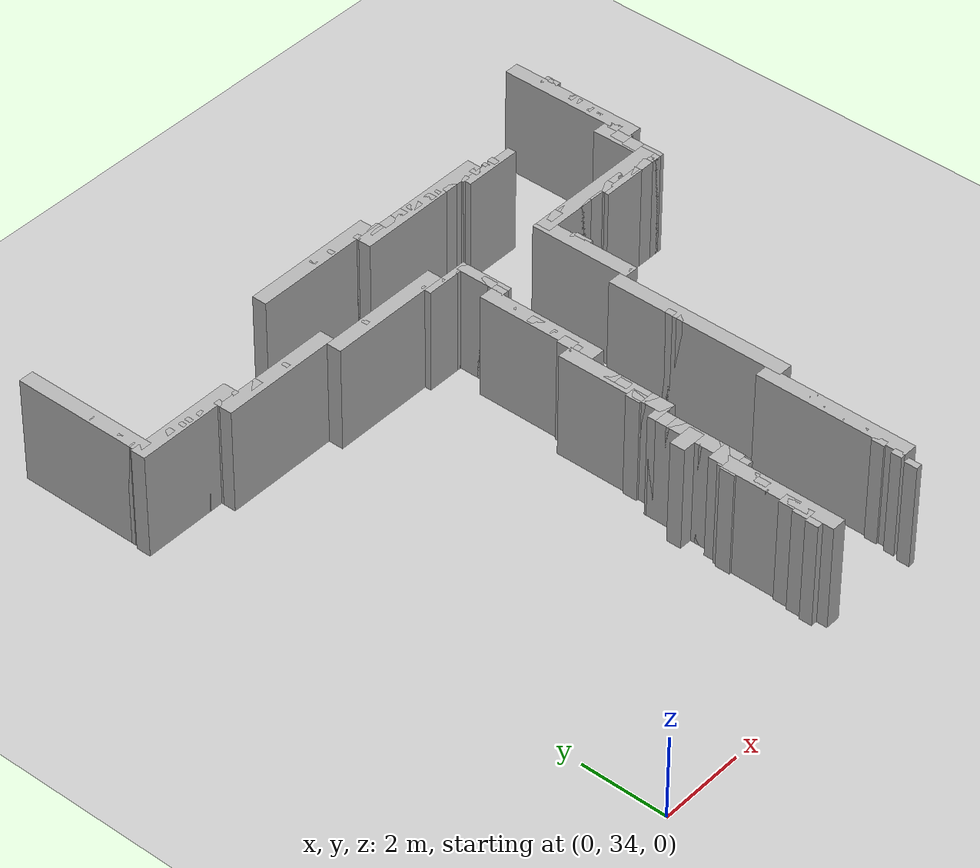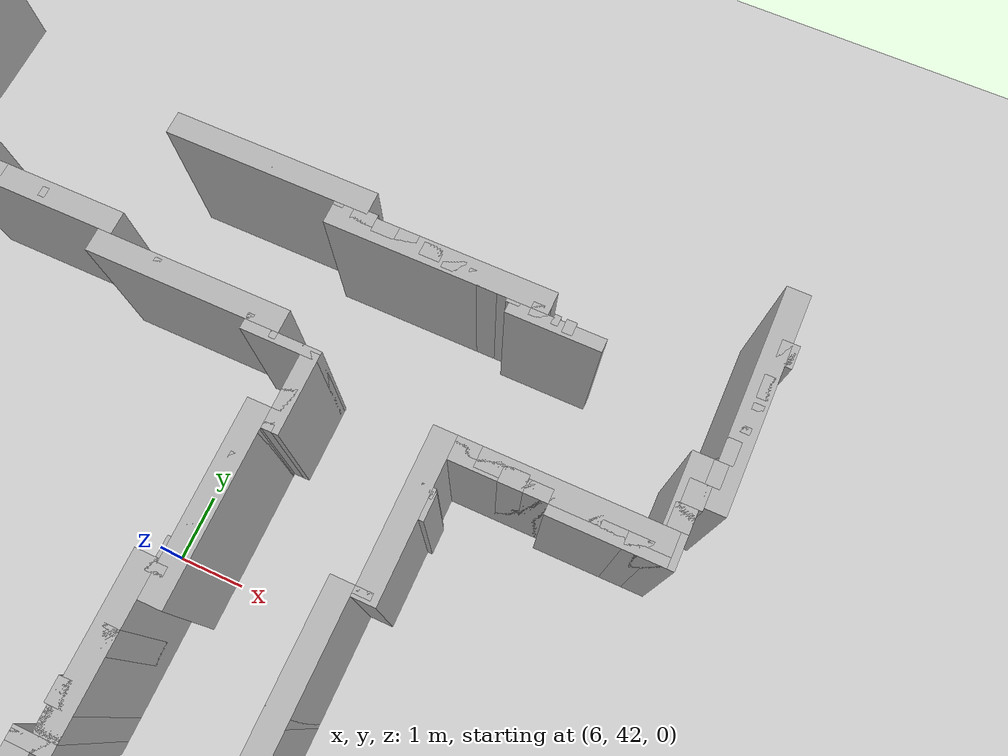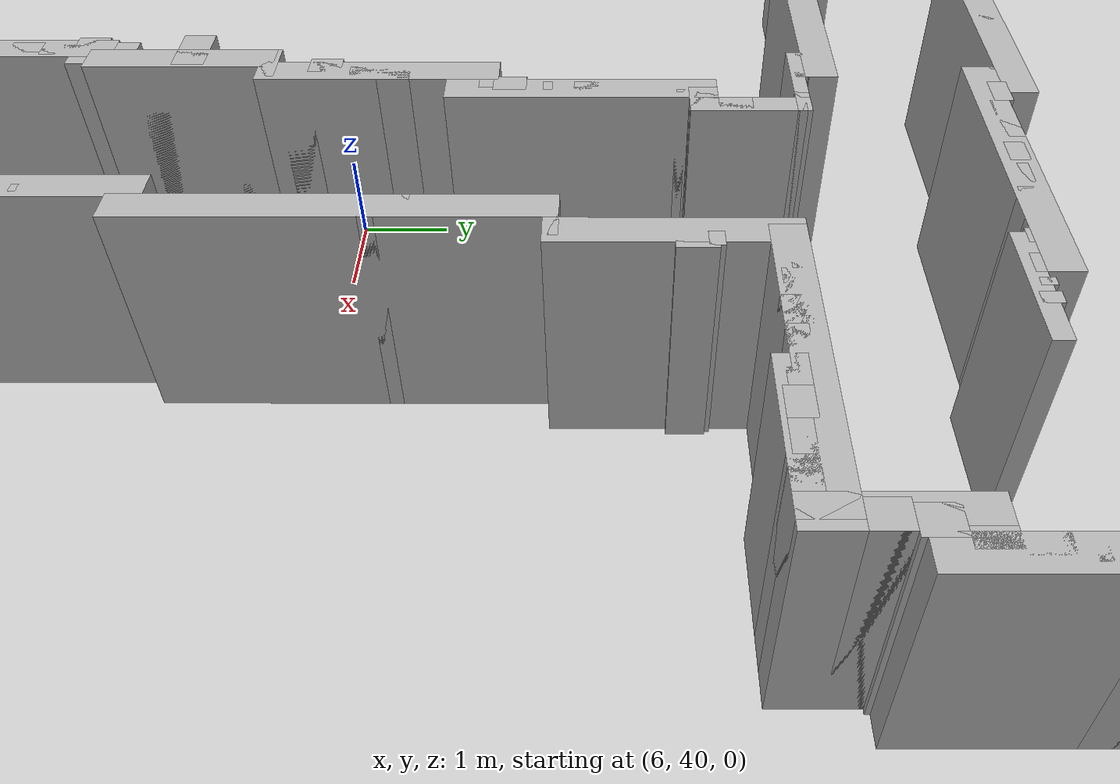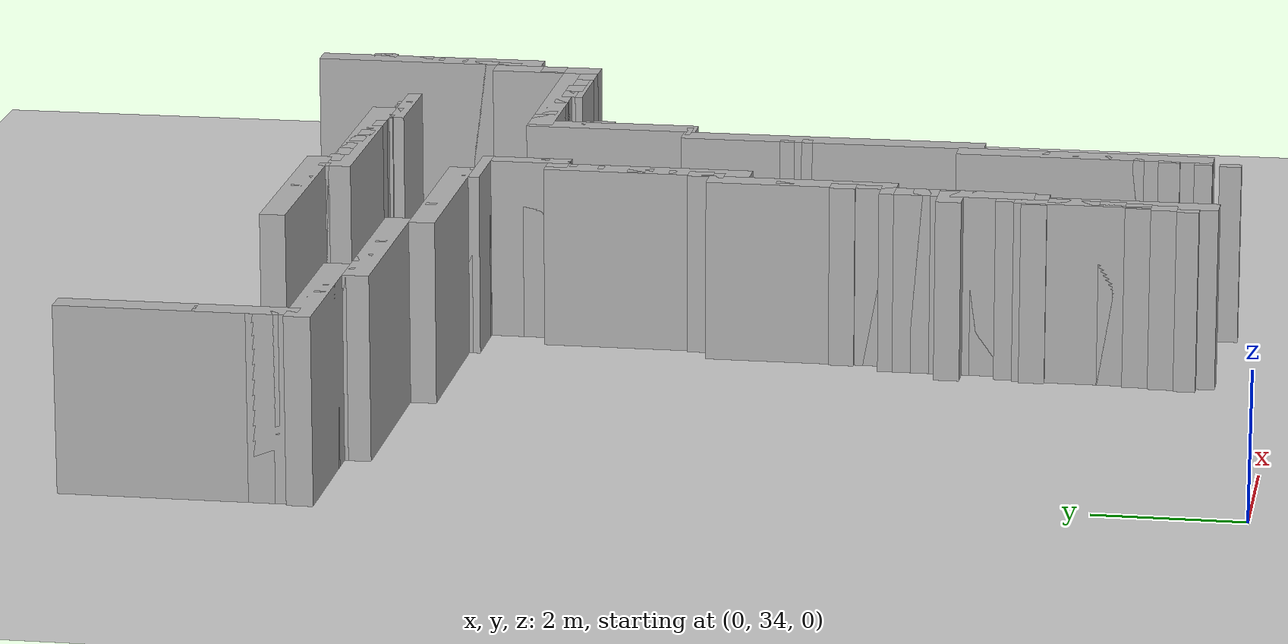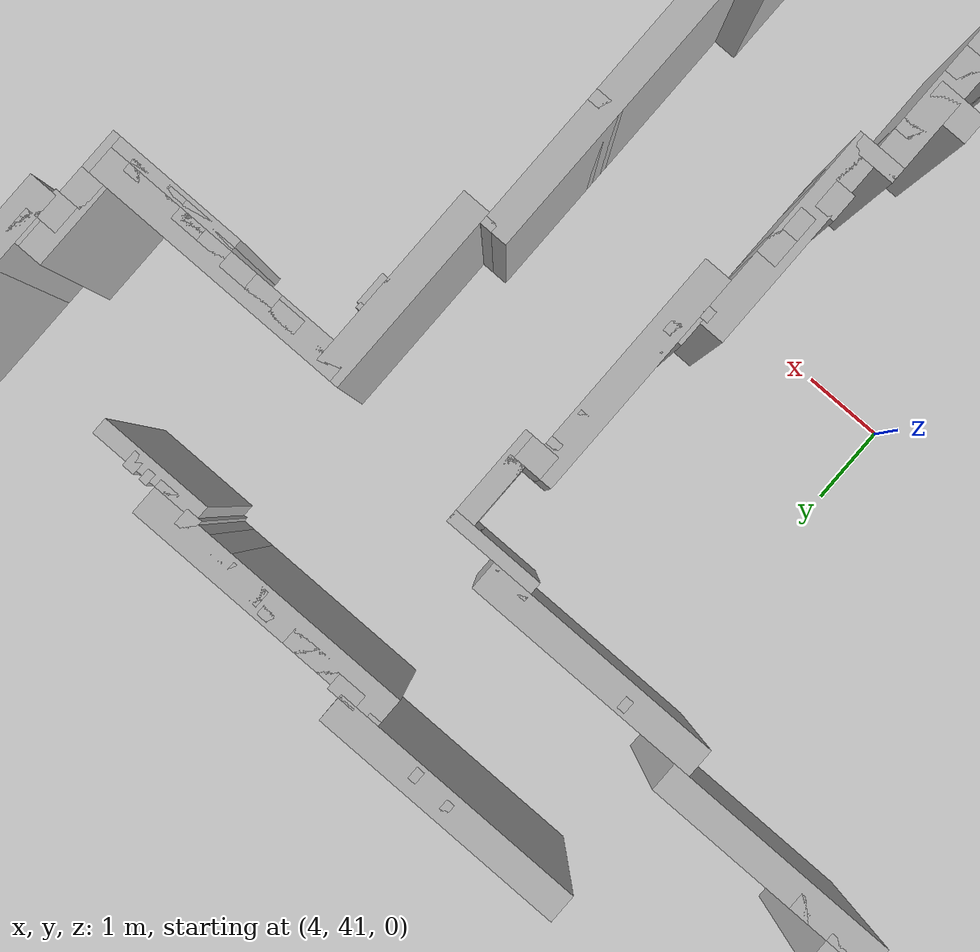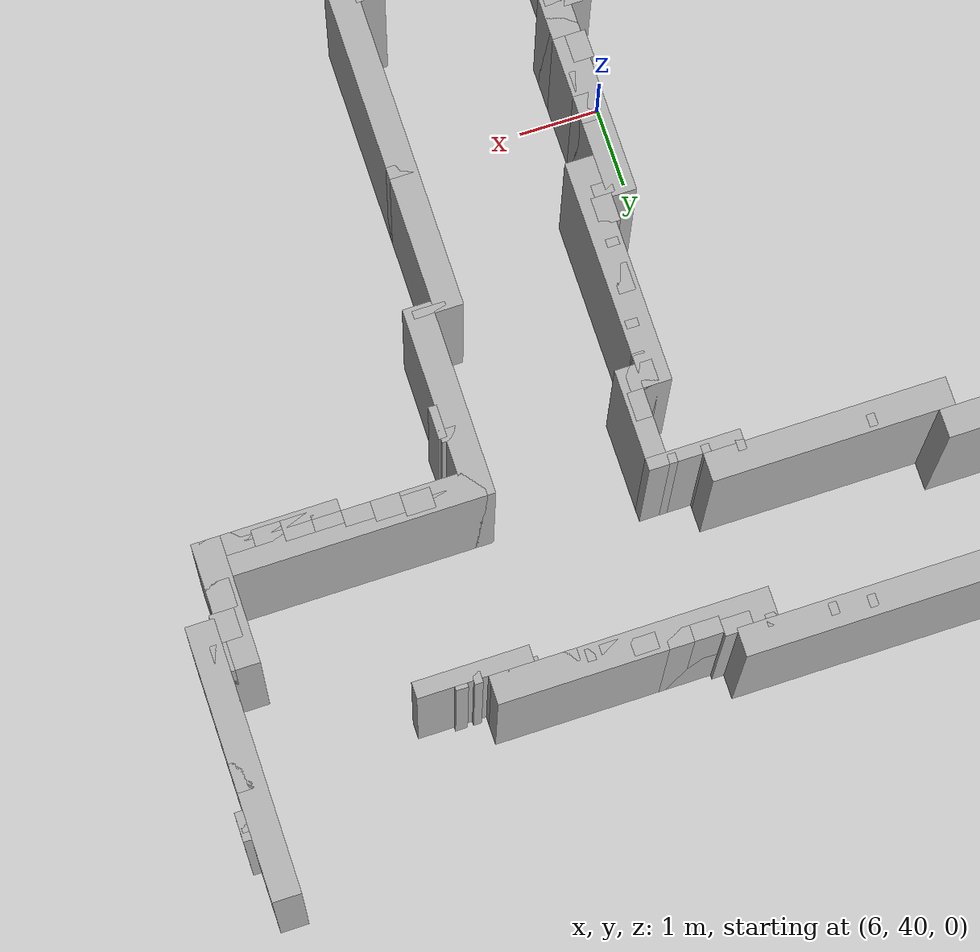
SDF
<sdf version="1.9">
 <world name="real_map_big_fix">
  <model name="ground_plane">
   <static>true</static>
   <link name="link">
    <collision name="collision">
     <geometry><plane><normal>0 0 1</normal><size>100 100</size></plane></geometry>
    </collision>
    <visual name="visual">
     <geometry><plane><normal>0 0 1</normal><size>100 100</size></plane></geometry>
     <material><ambient>0.8 0.8 0.8 1</ambient><diffuse>0.8 0.8 0.8 1</diffuse></material>
    </visual>
   </link>
  </model>
  <model name="wall_h_129">
   <static>true</static>
   <pose>12.7520 47.5620 1.2500 0 0 0</pose>
   <link name="link">
    <collision name="collision"><geometry><box><size>0.2500 0.3500 2.5000</size></box></geometry></collision>
    <visual name="visual">
     <geometry><box><size>0.2500 0.3500 2.5000</size></box></geometry>
     <material><ambient>0.7 0.7 0.7 1</ambient><diffuse>0.7 0.7 0.7 1</diffuse></material>
    </visual>
   </link>
  </model>
  <model name="wall_h_130">
   <static>true</static>
   <pose>5.2520 47.3120 1.2500 0 0 0</pose>
   <link name="link">
    <collision name="collision"><geometry><box><size>3.1500 0.3500 2.5000</size></box></geometry></collision>
    <visual name="visual">
     <geometry><box><size>3.1500 0.3500 2.5000</size></box></geometry>
     <material><ambient>0.7 0.7 0.7 1</ambient><diffuse>0.7 0.7 0.7 1</diffuse></material>
    </visual>
   </link>
  </model>
  <model name="wall_h_131">
   <static>true</static>
   <pose>-0.9230 47.2870 1.2500 0 0 0</pose>
   <link name="link">
    <collision name="collision"><geometry><box><size>0.2000 0.1000 2.5000</size></box></geometry></collision>
    <visual name="visual">
     <geometry><box><size>0.2000 0.1000 2.5000</size></box></geometry>
     <material><ambient>0.7 0.7 0.7 1</ambient><diffuse>0.7 0.7 0.7 1</diffuse></material>
    </visual>
   </link>
  </model>
  <model name="wall_h_132">
   <static>true</static>
   <pose>12.6770 47.0120 1.2500 0 0 0</pose>
   <link name="link">
    <collision name="collision"><geometry><box><size>0.2000 0.3500 2.5000</size></box></geometry></collision>
    <visual name="visual">
     <geometry><box><size>0.2000 0.3500 2.5000</size></box></geometry>
     <material><ambient>0.7 0.7 0.7 1</ambient><diffuse>0.7 0.7 0.7 1</diffuse></material>
    </visual>
   </link>
  </model>
  <model name="wall_h_133">
   <static>true</static>
   <pose>8.0020 46.9620 1.2500 0 0 0</pose>
   <link name="link">
    <collision name="collision"><geometry><box><size>3.3500 0.3500 2.5000</size></box></geometry></collision>
    <visual name="visual">
     <geometry><box><size>3.3500 0.3500 2.5000</size></box></geometry>
     <material><ambient>0.7 0.7 0.7 1</ambient><diffuse>0.7 0.7 0.7 1</diffuse></material>
    </visual>
   </link>
  </model>
  <model name="wall_h_134">
   <static>true</static>
   <pose>9.8270 46.6870 1.2500 0 0 0</pose>
   <link name="link">
    <collision name="collision"><geometry><box><size>1.4000 0.2000 2.5000</size></box></geometry></collision>
    <visual name="visual">
     <geometry><box><size>1.4000 0.2000 2.5000</size></box></geometry>
     <material><ambient>0.7 0.7 0.7 1</ambient><diffuse>0.7 0.7 0.7 1</diffuse></material>
    </visual>
   </link>
  </model>
  <model name="wall_h_135">
   <static>true</static>
   <pose>12.6520 46.7120 1.2500 0 0 0</pose>
   <link name="link">
    <collision name="collision"><geometry><box><size>0.1500 0.1000 2.5000</size></box></geometry></collision>
    <visual name="visual">
     <geometry><box><size>0.1500 0.1000 2.5000</size></box></geometry>
     <material><ambient>0.7 0.7 0.7 1</ambient><diffuse>0.7 0.7 0.7 1</diffuse></material>
    </visual>
   </link>
  </model>
  <model name="wall_h_136">
   <static>true</static>
   <pose>-0.9980 46.4620 1.2500 0 0 0</pose>
   <link name="link">
    <collision name="collision"><geometry><box><size>0.1500 0.3500 2.5000</size></box></geometry></collision>
    <visual name="visual">
     <geometry><box><size>0.1500 0.3500 2.5000</size></box></geometry>
     <material><ambient>0.7 0.7 0.7 1</ambient><diffuse>0.7 0.7 0.7 1</diffuse></material>
    </visual>
   </link>
  </model>
  <model name="wall_h_137">
   <static>true</static>
   <pose>12.6020 46.3620 1.2500 0 0 0</pose>
   <link name="link">
    <collision name="collision"><geometry><box><size>0.1500 0.1000 2.5000</size></box></geometry></collision>
    <visual name="visual">
     <geometry><box><size>0.1500 0.1000 2.5000</size></box></geometry>
     <material><ambient>0.7 0.7 0.7 1</ambient><diffuse>0.7 0.7 0.7 1</diffuse></material>
    </visual>
   </link>
  </model>
  <model name="wall_h_138">
   <static>true</static>
   <pose>-0.9980 46.2620 1.2500 0 0 0</pose>
   <link name="link">
    <collision name="collision"><geometry><box><size>0.1500 0.1000 2.5000</size></box></geometry></collision>
    <visual name="visual">
     <geometry><box><size>0.1500 0.1000 2.5000</size></box></geometry>
     <material><ambient>0.7 0.7 0.7 1</ambient><diffuse>0.7 0.7 0.7 1</diffuse></material>
    </visual>
   </link>
  </model>
  <model name="wall_h_139">
   <static>true</static>
   <pose>12.5270 46.0120 1.2500 0 0 0</pose>
   <link name="link">
    <collision name="collision"><geometry><box><size>0.2000 0.3500 2.5000</size></box></geometry></collision>
    <visual name="visual">
     <geometry><box><size>0.2000 0.3500 2.5000</size></box></geometry>
     <material><ambient>0.7 0.7 0.7 1</ambient><diffuse>0.7 0.7 0.7 1</diffuse></material>
    </visual>
   </link>
  </model>
  <model name="wall_h_140">
   <static>true</static>
   <pose>0.1520 45.9620 1.2500 0 0 0</pose>
   <link name="link">
    <collision name="collision"><geometry><box><size>2.5500 0.3500 2.5000</size></box></geometry></collision>
    <visual name="visual">
     <geometry><box><size>2.5500 0.3500 2.5000</size></box></geometry>
     <material><ambient>0.7 0.7 0.7 1</ambient><diffuse>0.7 0.7 0.7 1</diffuse></material>
    </visual>
   </link>
  </model>
  <model name="wall_h_141">
   <static>true</static>
   <pose>12.4770 45.6620 1.2500 0 0 0</pose>
   <link name="link">
    <collision name="collision"><geometry><box><size>0.2000 0.3500 2.5000</size></box></geometry></collision>
    <visual name="visual">
     <geometry><box><size>0.2000 0.3500 2.5000</size></box></geometry>
     <material><ambient>0.7 0.7 0.7 1</ambient><diffuse>0.7 0.7 0.7 1</diffuse></material>
    </visual>
   </link>
  </model>
  <model name="wall_h_142">
   <static>true</static>
   <pose>2.3270 45.6120 1.2500 0 0 0</pose>
   <link name="link">
    <collision name="collision"><geometry><box><size>2.9000 0.3500 2.5000</size></box></geometry></collision>
    <visual name="visual">
     <geometry><box><size>2.9000 0.3500 2.5000</size></box></geometry>
     <material><ambient>0.7 0.7 0.7 1</ambient><diffuse>0.7 0.7 0.7 1</diffuse></material>
    </visual>
   </link>
  </model>
  <model name="wall_h_143">
   <static>true</static>
   <pose>12.3270 45.3120 1.2500 0 0 0</pose>
   <link name="link">
    <collision name="collision"><geometry><box><size>0.3000 0.3500 2.5000</size></box></geometry></collision>
    <visual name="visual">
     <geometry><box><size>0.3000 0.3500 2.5000</size></box></geometry>
     <material><ambient>0.7 0.7 0.7 1</ambient><diffuse>0.7 0.7 0.7 1</diffuse></material>
    </visual>
   </link>
  </model>
  <model name="wall_h_144">
   <static>true</static>
   <pose>5.0520 45.2620 1.2500 0 0 0</pose>
   <link name="link">
    <collision name="collision"><geometry><box><size>2.9500 0.3500 2.5000</size></box></geometry></collision>
    <visual name="visual">
     <geometry><box><size>2.9500 0.3500 2.5000</size></box></geometry>
     <material><ambient>0.7 0.7 0.7 1</ambient><diffuse>0.7 0.7 0.7 1</diffuse></material>
    </visual>
   </link>
  </model>
  <model name="wall_h_145">
   <static>true</static>
   <pose>12.2770 44.9620 1.2500 0 0 0</pose>
   <link name="link">
    <collision name="collision"><geometry><box><size>0.3000 0.3500 2.5000</size></box></geometry></collision>
    <visual name="visual">
     <geometry><box><size>0.3000 0.3500 2.5000</size></box></geometry>
     <material><ambient>0.7 0.7 0.7 1</ambient><diffuse>0.7 0.7 0.7 1</diffuse></material>
    </visual>
   </link>
  </model>
  <model name="wall_h_146">
   <static>true</static>
   <pose>6.6020 45.0120 1.2500 0 0 0</pose>
   <link name="link">
    <collision name="collision"><geometry><box><size>1.1500 0.1500 2.5000</size></box></geometry></collision>
    <visual name="visual">
     <geometry><box><size>1.1500 0.1500 2.5000</size></box></geometry>
     <material><ambient>0.7 0.7 0.7 1</ambient><diffuse>0.7 0.7 0.7 1</diffuse></material>
    </visual>
   </link>
  </model>
  <model name="wall_h_147">
   <static>true</static>
   <pose>10.6770 44.6120 1.2500 0 0 0</pose>
   <link name="link">
    <collision name="collision"><geometry><box><size>3.3000 0.3500 2.5000</size></box></geometry></collision>
    <visual name="visual">
     <geometry><box><size>3.3000 0.3500 2.5000</size></box></geometry>
     <material><ambient>0.7 0.7 0.7 1</ambient><diffuse>0.7 0.7 0.7 1</diffuse></material>
    </visual>
   </link>
  </model>
  <model name="wall_h_148">
   <static>true</static>
   <pose>7.0270 44.3120 1.2500 0 0 0</pose>
   <link name="link">
    <collision name="collision"><geometry><box><size>0.2000 0.3500 2.5000</size></box></geometry></collision>
    <visual name="visual">
     <geometry><box><size>0.2000 0.3500 2.5000</size></box></geometry>
     <material><ambient>0.7 0.7 0.7 1</ambient><diffuse>0.7 0.7 0.7 1</diffuse></material>
    </visual>
   </link>
  </model>
  <model name="wall_h_149">
   <static>true</static>
   <pose>11.5020 44.3620 1.2500 0 0 0</pose>
   <link name="link">
    <collision name="collision"><geometry><box><size>1.6500 0.1500 2.5000</size></box></geometry></collision>
    <visual name="visual">
     <geometry><box><size>1.6500 0.1500 2.5000</size></box></geometry>
     <material><ambient>0.7 0.7 0.7 1</ambient><diffuse>0.7 0.7 0.7 1</diffuse></material>
    </visual>
   </link>
  </model>
  <model name="wall_h_150">
   <static>true</static>
   <pose>6.9020 43.9870 1.2500 0 0 0</pose>
   <link name="link">
    <collision name="collision"><geometry><box><size>0.3500 0.3000 2.5000</size></box></geometry></collision>
    <visual name="visual">
     <geometry><box><size>0.3500 0.3000 2.5000</size></box></geometry>
     <material><ambient>0.7 0.7 0.7 1</ambient><diffuse>0.7 0.7 0.7 1</diffuse></material>
    </visual>
   </link>
  </model>
  <model name="wall_h_151">
   <static>true</static>
   <pose>9.2270 43.9620 1.2500 0 0 0</pose>
   <link name="link">
    <collision name="collision"><geometry><box><size>0.2000 0.1500 2.5000</size></box></geometry></collision>
    <visual name="visual">
     <geometry><box><size>0.2000 0.1500 2.5000</size></box></geometry>
     <material><ambient>0.7 0.7 0.7 1</ambient><diffuse>0.7 0.7 0.7 1</diffuse></material>
    </visual>
   </link>
  </model>
  <model name="wall_h_152">
   <static>true</static>
   <pose>6.8520 43.7620 1.2500 0 0 0</pose>
   <link name="link">
    <collision name="collision"><geometry><box><size>0.1500 0.1000 2.5000</size></box></geometry></collision>
    <visual name="visual">
     <geometry><box><size>0.1500 0.1000 2.5000</size></box></geometry>
     <material><ambient>0.7 0.7 0.7 1</ambient><diffuse>0.7 0.7 0.7 1</diffuse></material>
    </visual>
   </link>
  </model>
  <model name="wall_h_153">
   <static>true</static>
   <pose>6.8020 43.3620 1.2500 0 0 0</pose>
   <link name="link">
    <collision name="collision"><geometry><box><size>0.1500 0.1000 2.5000</size></box></geometry></collision>
    <visual name="visual">
     <geometry><box><size>0.1500 0.1000 2.5000</size></box></geometry>
     <material><ambient>0.7 0.7 0.7 1</ambient><diffuse>0.7 0.7 0.7 1</diffuse></material>
    </visual>
   </link>
  </model>
  <model name="wall_h_154">
   <static>true</static>
   <pose>6.7270 42.8120 1.2500 0 0 0</pose>
   <link name="link">
    <collision name="collision"><geometry><box><size>0.2000 0.3500 2.5000</size></box></geometry></collision>
    <visual name="visual">
     <geometry><box><size>0.2000 0.3500 2.5000</size></box></geometry>
     <material><ambient>0.7 0.7 0.7 1</ambient><diffuse>0.7 0.7 0.7 1</diffuse></material>
    </visual>
   </link>
  </model>
  <model name="wall_h_155">
   <static>true</static>
   <pose>8.9770 42.4870 1.2500 0 0 0</pose>
   <link name="link">
    <collision name="collision"><geometry><box><size>0.4000 0.1000 2.5000</size></box></geometry></collision>
    <visual name="visual">
     <geometry><box><size>0.4000 0.1000 2.5000</size></box></geometry>
     <material><ambient>0.7 0.7 0.7 1</ambient><diffuse>0.7 0.7 0.7 1</diffuse></material>
    </visual>
   </link>
  </model>
  <model name="wall_h_156">
   <static>true</static>
   <pose>6.7020 42.3620 1.2500 0 0 0</pose>
   <link name="link">
    <collision name="collision"><geometry><box><size>0.1500 0.1000 2.5000</size></box></geometry></collision>
    <visual name="visual">
     <geometry><box><size>0.1500 0.1000 2.5000</size></box></geometry>
     <material><ambient>0.7 0.7 0.7 1</ambient><diffuse>0.7 0.7 0.7 1</diffuse></material>
    </visual>
   </link>
  </model>
  <model name="wall_h_157">
   <static>true</static>
   <pose>6.6520 41.9620 1.2500 0 0 0</pose>
   <link name="link">
    <collision name="collision"><geometry><box><size>0.2500 0.3500 2.5000</size></box></geometry></collision>
    <visual name="visual">
     <geometry><box><size>0.2500 0.3500 2.5000</size></box></geometry>
     <material><ambient>0.7 0.7 0.7 1</ambient><diffuse>0.7 0.7 0.7 1</diffuse></material>
    </visual>
   </link>
  </model>
  <model name="wall_h_158">
   <static>true</static>
   <pose>6.6020 41.7120 1.2500 0 0 0</pose>
   <link name="link">
    <collision name="collision"><geometry><box><size>0.2500 0.1500 2.5000</size></box></geometry></collision>
    <visual name="visual">
     <geometry><box><size>0.2500 0.1500 2.5000</size></box></geometry>
     <material><ambient>0.7 0.7 0.7 1</ambient><diffuse>0.7 0.7 0.7 1</diffuse></material>
    </visual>
   </link>
  </model>
  <model name="wall_h_159">
   <static>true</static>
   <pose>8.6520 41.0370 1.2500 0 0 0</pose>
   <link name="link">
    <collision name="collision"><geometry><box><size>0.1500 0.2000 2.5000</size></box></geometry></collision>
    <visual name="visual">
     <geometry><box><size>0.1500 0.2000 2.5000</size></box></geometry>
     <material><ambient>0.7 0.7 0.7 1</ambient><diffuse>0.7 0.7 0.7 1</diffuse></material>
    </visual>
   </link>
  </model>
  <model name="wall_h_160">
   <static>true</static>
   <pose>6.4520 40.7120 1.2500 0 0 0</pose>
   <link name="link">
    <collision name="collision"><geometry><box><size>0.2500 0.3500 2.5000</size></box></geometry></collision>
    <visual name="visual">
     <geometry><box><size>0.2500 0.3500 2.5000</size></box></geometry>
     <material><ambient>0.7 0.7 0.7 1</ambient><diffuse>0.7 0.7 0.7 1</diffuse></material>
    </visual>
   </link>
  </model>
  <model name="wall_h_161">
   <static>true</static>
   <pose>8.7520 40.7620 1.2500 0 0 0</pose>
   <link name="link">
    <collision name="collision"><geometry><box><size>0.3500 0.1500 2.5000</size></box></geometry></collision>
    <visual name="visual">
     <geometry><box><size>0.3500 0.1500 2.5000</size></box></geometry>
     <material><ambient>0.7 0.7 0.7 1</ambient><diffuse>0.7 0.7 0.7 1</diffuse></material>
    </visual>
   </link>
  </model>
  <model name="wall_h_162">
   <static>true</static>
   <pose>6.4270 40.3870 1.2500 0 0 0</pose>
   <link name="link">
    <collision name="collision"><geometry><box><size>0.2000 0.3000 2.5000</size></box></geometry></collision>
    <visual name="visual">
     <geometry><box><size>0.2000 0.3000 2.5000</size></box></geometry>
     <material><ambient>0.7 0.7 0.7 1</ambient><diffuse>0.7 0.7 0.7 1</diffuse></material>
    </visual>
   </link>
  </model>
  <model name="wall_h_163">
   <static>true</static>
   <pose>6.3020 39.9620 1.2500 0 0 0</pose>
   <link name="link">
    <collision name="collision"><geometry><box><size>0.2500 0.3500 2.5000</size></box></geometry></collision>
    <visual name="visual">
     <geometry><box><size>0.2500 0.3500 2.5000</size></box></geometry>
     <material><ambient>0.7 0.7 0.7 1</ambient><diffuse>0.7 0.7 0.7 1</diffuse></material>
    </visual>
   </link>
  </model>
  <model name="wall_h_164">
   <static>true</static>
   <pose>6.4020 39.6120 1.2500 0 0 0</pose>
   <link name="link">
    <collision name="collision"><geometry><box><size>0.3500 0.3500 2.5000</size></box></geometry></collision>
    <visual name="visual">
     <geometry><box><size>0.3500 0.3500 2.5000</size></box></geometry>
     <material><ambient>0.7 0.7 0.7 1</ambient><diffuse>0.7 0.7 0.7 1</diffuse></material>
    </visual>
   </link>
  </model>
  <model name="wall_h_165">
   <static>true</static>
   <pose>6.2520 39.3370 1.2500 0 0 0</pose>
   <link name="link">
    <collision name="collision"><geometry><box><size>0.5500 0.2000 2.5000</size></box></geometry></collision>
    <visual name="visual">
     <geometry><box><size>0.5500 0.2000 2.5000</size></box></geometry>
     <material><ambient>0.7 0.7 0.7 1</ambient><diffuse>0.7 0.7 0.7 1</diffuse></material>
    </visual>
   </link>
  </model>
  <model name="wall_h_166">
   <static>true</static>
   <pose>6.1520 38.8620 1.2500 0 0 0</pose>
   <link name="link">
    <collision name="collision"><geometry><box><size>0.3500 0.2500 2.5000</size></box></geometry></collision>
    <visual name="visual">
     <geometry><box><size>0.3500 0.2500 2.5000</size></box></geometry>
     <material><ambient>0.7 0.7 0.7 1</ambient><diffuse>0.7 0.7 0.7 1</diffuse></material>
    </visual>
   </link>
  </model>
  <model name="wall_h_167">
   <static>true</static>
   <pose>5.9770 38.4620 1.2500 0 0 0</pose>
   <link name="link">
    <collision name="collision"><geometry><box><size>0.6000 0.3500 2.5000</size></box></geometry></collision>
    <visual name="visual">
     <geometry><box><size>0.6000 0.3500 2.5000</size></box></geometry>
     <material><ambient>0.7 0.7 0.7 1</ambient><diffuse>0.7 0.7 0.7 1</diffuse></material>
    </visual>
   </link>
  </model>
  <model name="wall_h_168">
   <static>true</static>
   <pose>6.1520 38.0120 1.2500 0 0 0</pose>
   <link name="link">
    <collision name="collision"><geometry><box><size>0.3500 0.3500 2.5000</size></box></geometry></collision>
    <visual name="visual">
     <geometry><box><size>0.3500 0.3500 2.5000</size></box></geometry>
     <material><ambient>0.7 0.7 0.7 1</ambient><diffuse>0.7 0.7 0.7 1</diffuse></material>
    </visual>
   </link>
  </model>
  <model name="wall_h_169">
   <static>true</static>
   <pose>6.0770 37.6620 1.2500 0 0 0</pose>
   <link name="link">
    <collision name="collision"><geometry><box><size>0.5000 0.3500 2.5000</size></box></geometry></collision>
    <visual name="visual">
     <geometry><box><size>0.5000 0.3500 2.5000</size></box></geometry>
     <material><ambient>0.7 0.7 0.7 1</ambient><diffuse>0.7 0.7 0.7 1</diffuse></material>
    </visual>
   </link>
  </model>
  <model name="wall_h_170">
   <static>true</static>
   <pose>6.0020 37.3120 1.2500 0 0 0</pose>
   <link name="link">
    <collision name="collision"><geometry><box><size>0.5500 0.3500 2.5000</size></box></geometry></collision>
    <visual name="visual">
     <geometry><box><size>0.5500 0.3500 2.5000</size></box></geometry>
     <material><ambient>0.7 0.7 0.7 1</ambient><diffuse>0.7 0.7 0.7 1</diffuse></material>
    </visual>
   </link>
  </model>
  <model name="wall_h_171">
   <static>true</static>
   <pose>8.5020 37.4120 1.2500 0 0 0</pose>
   <link name="link">
    <collision name="collision"><geometry><box><size>0.1500 0.1000 2.5000</size></box></geometry></collision>
    <visual name="visual">
     <geometry><box><size>0.1500 0.1000 2.5000</size></box></geometry>
     <material><ambient>0.7 0.7 0.7 1</ambient><diffuse>0.7 0.7 0.7 1</diffuse></material>
    </visual>
   </link>
  </model>
  <model name="wall_h_172">
   <static>true</static>
   <pose>5.9770 36.9620 1.2500 0 0 0</pose>
   <link name="link">
    <collision name="collision"><geometry><box><size>0.2000 0.3500 2.5000</size></box></geometry></collision>
    <visual name="visual">
     <geometry><box><size>0.2000 0.3500 2.5000</size></box></geometry>
     <material><ambient>0.7 0.7 0.7 1</ambient><diffuse>0.7 0.7 0.7 1</diffuse></material>
    </visual>
   </link>
  </model>
  <model name="wall_h_173">
   <static>true</static>
   <pose>8.4520 37.0120 1.2500 0 0 0</pose>
   <link name="link">
    <collision name="collision"><geometry><box><size>0.1500 0.1500 2.5000</size></box></geometry></collision>
    <visual name="visual">
     <geometry><box><size>0.1500 0.1500 2.5000</size></box></geometry>
     <material><ambient>0.7 0.7 0.7 1</ambient><diffuse>0.7 0.7 0.7 1</diffuse></material>
    </visual>
   </link>
  </model>
  <model name="wall_h_174">
   <static>true</static>
   <pose>5.9270 36.6120 1.2500 0 0 0</pose>
   <link name="link">
    <collision name="collision"><geometry><box><size>0.2000 0.3500 2.5000</size></box></geometry></collision>
    <visual name="visual">
     <geometry><box><size>0.2000 0.3500 2.5000</size></box></geometry>
     <material><ambient>0.7 0.7 0.7 1</ambient><diffuse>0.7 0.7 0.7 1</diffuse></material>
    </visual>
   </link>
  </model>
  <model name="wall_h_175">
   <static>true</static>
   <pose>8.4020 36.5370 1.2500 0 0 0</pose>
   <link name="link">
    <collision name="collision"><geometry><box><size>0.1500 0.1000 2.5000</size></box></geometry></collision>
    <visual name="visual">
     <geometry><box><size>0.1500 0.1000 2.5000</size></box></geometry>
     <material><ambient>0.7 0.7 0.7 1</ambient><diffuse>0.7 0.7 0.7 1</diffuse></material>
    </visual>
   </link>
  </model>
  <model name="wall_h_176">
   <static>true</static>
   <pose>5.9020 36.2620 1.2500 0 0 0</pose>
   <link name="link">
    <collision name="collision"><geometry><box><size>0.2500 0.3500 2.5000</size></box></geometry></collision>
    <visual name="visual">
     <geometry><box><size>0.2500 0.3500 2.5000</size></box></geometry>
     <material><ambient>0.7 0.7 0.7 1</ambient><diffuse>0.7 0.7 0.7 1</diffuse></material>
    </visual>
   </link>
  </model>
  <model name="wall_h_177">
   <static>true</static>
   <pose>8.3520 36.1120 1.2500 0 0 0</pose>
   <link name="link">
    <collision name="collision"><geometry><box><size>0.1500 0.1500 2.5000</size></box></geometry></collision>
    <visual name="visual">
     <geometry><box><size>0.1500 0.1500 2.5000</size></box></geometry>
     <material><ambient>0.7 0.7 0.7 1</ambient><diffuse>0.7 0.7 0.7 1</diffuse></material>
    </visual>
   </link>
  </model>
  <model name="wall_h_178">
   <static>true</static>
   <pose>5.8520 35.9120 1.2500 0 0 0</pose>
   <link name="link">
    <collision name="collision"><geometry><box><size>0.2500 0.3500 2.5000</size></box></geometry></collision>
    <visual name="visual">
     <geometry><box><size>0.2500 0.3500 2.5000</size></box></geometry>
     <material><ambient>0.7 0.7 0.7 1</ambient><diffuse>0.7 0.7 0.7 1</diffuse></material>
    </visual>
   </link>
  </model>
  <model name="wall_h_179">
   <static>true</static>
   <pose>8.3020 35.6870 1.2500 0 0 0</pose>
   <link name="link">
    <collision name="collision"><geometry><box><size>0.1500 0.3000 2.5000</size></box></geometry></collision>
    <visual name="visual">
     <geometry><box><size>0.1500 0.3000 2.5000</size></box></geometry>
     <material><ambient>0.7 0.7 0.7 1</ambient><diffuse>0.7 0.7 0.7 1</diffuse></material>
    </visual>
   </link>
  </model>
  <model name="wall_h_180">
   <static>true</static>
   <pose>5.8020 35.5620 1.2500 0 0 0</pose>
   <link name="link">
    <collision name="collision"><geometry><box><size>0.2500 0.3500 2.5000</size></box></geometry></collision>
    <visual name="visual">
     <geometry><box><size>0.2500 0.3500 2.5000</size></box></geometry>
     <material><ambient>0.7 0.7 0.7 1</ambient><diffuse>0.7 0.7 0.7 1</diffuse></material>
    </visual>
   </link>
  </model>
  <model name="wall_h_181">
   <static>true</static>
   <pose>5.7520 35.2370 1.2500 0 0 0</pose>
   <link name="link">
    <collision name="collision"><geometry><box><size>0.2500 0.3000 2.5000</size></box></geometry></collision>
    <visual name="visual">
     <geometry><box><size>0.2500 0.3000 2.5000</size></box></geometry>
     <material><ambient>0.7 0.7 0.7 1</ambient><diffuse>0.7 0.7 0.7 1</diffuse></material>
    </visual>
   </link>
  </model>
  <model name="wall_h_182">
   <static>true</static>
   <pose>8.2520 35.2120 1.2500 0 0 0</pose>
   <link name="link">
    <collision name="collision"><geometry><box><size>0.1500 0.2500 2.5000</size></box></geometry></collision>
    <visual name="visual">
     <geometry><box><size>0.1500 0.2500 2.5000</size></box></geometry>
     <material><ambient>0.7 0.7 0.7 1</ambient><diffuse>0.7 0.7 0.7 1</diffuse></material>
    </visual>
   </link>
  </model>
  <model name="wall_h_183">
   <static>true</static>
   <pose>8.2020 34.8370 1.2500 0 0 0</pose>
   <link name="link">
    <collision name="collision"><geometry><box><size>0.1500 0.3000 2.5000</size></box></geometry></collision>
    <visual name="visual">
     <geometry><box><size>0.1500 0.3000 2.5000</size></box></geometry>
     <material><ambient>0.7 0.7 0.7 1</ambient><diffuse>0.7 0.7 0.7 1</diffuse></material>
    </visual>
   </link>
  </model>
  <model name="wall_v_036">
   <static>true</static>
   <pose>-0.8980 47.5620 1.2500 0 0 0</pose>
   <link name="link">
    <collision name="collision"><geometry><box><size>0.3500 3.1500 2.5000</size></box></geometry></collision>
    <visual name="visual">
     <geometry><box><size>0.3500 3.1500 2.5000</size></box></geometry>
     <material><ambient>0.7 0.7 0.7 1</ambient><diffuse>0.7 0.7 0.7 1</diffuse></material>
    </visual>
   </link>
  </model>
  <model name="wall_v_047">
   <static>true</static>
   <pose>-0.2730 45.9620 1.2500 0 0 0</pose>
   <link name="link">
    <collision name="collision"><geometry><box><size>0.2000 0.1500 2.5000</size></box></geometry></collision>
    <visual name="visual">
     <geometry><box><size>0.2000 0.1500 2.5000</size></box></geometry>
     <material><ambient>0.7 0.7 0.7 1</ambient><diffuse>0.7 0.7 0.7 1</diffuse></material>
    </visual>
   </link>
  </model>
  <model name="wall_v_052">
   <static>true</static>
   <pose>0.0520 45.9120 1.2500 0 0 0</pose>
   <link name="link">
    <collision name="collision"><geometry><box><size>0.1000 0.1500 2.5000</size></box></geometry></collision>
    <visual name="visual">
     <geometry><box><size>0.1000 0.1500 2.5000</size></box></geometry>
     <material><ambient>0.7 0.7 0.7 1</ambient><diffuse>0.7 0.7 0.7 1</diffuse></material>
    </visual>
   </link>
  </model>
  <model name="wall_v_054">
   <static>true</static>
   <pose>0.2270 45.9120 1.2500 0 0 0</pose>
   <link name="link">
    <collision name="collision"><geometry><box><size>0.1000 0.1500 2.5000</size></box></geometry></collision>
    <visual name="visual">
     <geometry><box><size>0.1000 0.1500 2.5000</size></box></geometry>
     <material><ambient>0.7 0.7 0.7 1</ambient><diffuse>0.7 0.7 0.7 1</diffuse></material>
    </visual>
   </link>
  </model>
  <model name="wall_v_056">
   <static>true</static>
   <pose>0.4770 45.8620 1.2500 0 0 0</pose>
   <link name="link">
    <collision name="collision"><geometry><box><size>0.2000 0.1500 2.5000</size></box></geometry></collision>
    <visual name="visual">
     <geometry><box><size>0.2000 0.1500 2.5000</size></box></geometry>
     <material><ambient>0.7 0.7 0.7 1</ambient><diffuse>0.7 0.7 0.7 1</diffuse></material>
    </visual>
   </link>
  </model>
  <model name="wall_v_063">
   <static>true</static>
   <pose>0.9520 45.8120 1.2500 0 0 0</pose>
   <link name="link">
    <collision name="collision"><geometry><box><size>0.1500 0.1500 2.5000</size></box></geometry></collision>
    <visual name="visual">
     <geometry><box><size>0.1500 0.1500 2.5000</size></box></geometry>
     <material><ambient>0.7 0.7 0.7 1</ambient><diffuse>0.7 0.7 0.7 1</diffuse></material>
    </visual>
   </link>
  </model>
  <model name="wall_v_067">
   <static>true</static>
   <pose>1.3020 45.7620 1.2500 0 0 0</pose>
   <link name="link">
    <collision name="collision"><geometry><box><size>0.2500 0.1500 2.5000</size></box></geometry></collision>
    <visual name="visual">
     <geometry><box><size>0.2500 0.1500 2.5000</size></box></geometry>
     <material><ambient>0.7 0.7 0.7 1</ambient><diffuse>0.7 0.7 0.7 1</diffuse></material>
    </visual>
   </link>
  </model>
  <model name="wall_v_073">
   <static>true</static>
   <pose>1.7520 45.6870 1.2500 0 0 0</pose>
   <link name="link">
    <collision name="collision"><geometry><box><size>0.3500 0.2000 2.5000</size></box></geometry></collision>
    <visual name="visual">
     <geometry><box><size>0.3500 0.2000 2.5000</size></box></geometry>
     <material><ambient>0.7 0.7 0.7 1</ambient><diffuse>0.7 0.7 0.7 1</diffuse></material>
    </visual>
   </link>
  </model>
  <model name="wall_v_098">
   <static>true</static>
   <pose>2.6020 45.6120 1.2500 0 0 0</pose>
   <link name="link">
    <collision name="collision"><geometry><box><size>0.1000 0.1500 2.5000</size></box></geometry></collision>
    <visual name="visual">
     <geometry><box><size>0.1000 0.1500 2.5000</size></box></geometry>
     <material><ambient>0.7 0.7 0.7 1</ambient><diffuse>0.7 0.7 0.7 1</diffuse></material>
    </visual>
   </link>
  </model>
  <model name="wall_v_129">
   <static>true</static>
   <pose>4.5520 45.3120 1.2500 0 0 0</pose>
   <link name="link">
    <collision name="collision"><geometry><box><size>0.1000 0.1500 2.5000</size></box></geometry></collision>
    <visual name="visual">
     <geometry><box><size>0.1000 0.1500 2.5000</size></box></geometry>
     <material><ambient>0.7 0.7 0.7 1</ambient><diffuse>0.7 0.7 0.7 1</diffuse></material>
    </visual>
   </link>
  </model>
  <model name="wall_v_142">
   <static>true</static>
   <pose>5.2520 47.3120 1.2500 0 0 0</pose>
   <link name="link">
    <collision name="collision"><geometry><box><size>0.1000 0.1500 2.5000</size></box></geometry></collision>
    <visual name="visual">
     <geometry><box><size>0.1000 0.1500 2.5000</size></box></geometry>
     <material><ambient>0.7 0.7 0.7 1</ambient><diffuse>0.7 0.7 0.7 1</diffuse></material>
    </visual>
   </link>
  </model>
  <model name="wall_v_149">
   <static>true</static>
   <pose>5.7020 47.2620 1.2500 0 0 0</pose>
   <link name="link">
    <collision name="collision"><geometry><box><size>0.1000 0.1500 2.5000</size></box></geometry></collision>
    <visual name="visual">
     <geometry><box><size>0.1000 0.1500 2.5000</size></box></geometry>
     <material><ambient>0.7 0.7 0.7 1</ambient><diffuse>0.7 0.7 0.7 1</diffuse></material>
    </visual>
   </link>
  </model>
  <model name="wall_v_150">
   <static>true</static>
   <pose>5.9520 36.2120 1.2500 0 0 0</pose>
   <link name="link">
    <collision name="collision"><geometry><box><size>0.3500 2.7500 2.5000</size></box></geometry></collision>
    <visual name="visual">
     <geometry><box><size>0.3500 2.7500 2.5000</size></box></geometry>
     <material><ambient>0.7 0.7 0.7 1</ambient><diffuse>0.7 0.7 0.7 1</diffuse></material>
    </visual>
   </link>
  </model>
  <model name="wall_v_154">
   <static>true</static>
   <pose>6.1520 38.3620 1.2500 0 0 0</pose>
   <link name="link">
    <collision name="collision"><geometry><box><size>0.3500 2.0500 2.5000</size></box></geometry></collision>
    <visual name="visual">
     <geometry><box><size>0.3500 2.0500 2.5000</size></box></geometry>
     <material><ambient>0.7 0.7 0.7 1</ambient><diffuse>0.7 0.7 0.7 1</diffuse></material>
    </visual>
   </link>
  </model>
  <model name="wall_v_156">
   <static>true</static>
   <pose>6.0770 45.1120 1.2500 0 0 0</pose>
   <link name="link">
    <collision name="collision"><geometry><box><size>0.1000 0.1500 2.5000</size></box></geometry></collision>
    <visual name="visual">
     <geometry><box><size>0.1000 0.1500 2.5000</size></box></geometry>
     <material><ambient>0.7 0.7 0.7 1</ambient><diffuse>0.7 0.7 0.7 1</diffuse></material>
    </visual>
   </link>
  </model>
  <model name="wall_v_159">
   <static>true</static>
   <pose>6.4020 40.5370 1.2500 0 0 0</pose>
   <link name="link">
    <collision name="collision"><geometry><box><size>0.3500 2.6000 2.5000</size></box></geometry></collision>
    <visual name="visual">
     <geometry><box><size>0.3500 2.6000 2.5000</size></box></geometry>
     <material><ambient>0.7 0.7 0.7 1</ambient><diffuse>0.7 0.7 0.7 1</diffuse></material>
    </visual>
   </link>
  </model>
  <model name="wall_v_160">
   <static>true</static>
   <pose>6.4020 47.1620 1.2500 0 0 0</pose>
   <link name="link">
    <collision name="collision"><geometry><box><size>0.1500 0.1500 2.5000</size></box></geometry></collision>
    <visual name="visual">
     <geometry><box><size>0.1500 0.1500 2.5000</size></box></geometry>
     <material><ambient>0.7 0.7 0.7 1</ambient><diffuse>0.7 0.7 0.7 1</diffuse></material>
    </visual>
   </link>
  </model>
  <model name="wall_v_162">
   <static>true</static>
   <pose>6.4770 45.0620 1.2500 0 0 0</pose>
   <link name="link">
    <collision name="collision"><geometry><box><size>0.1000 0.1500 2.5000</size></box></geometry></collision>
    <visual name="visual">
     <geometry><box><size>0.1000 0.1500 2.5000</size></box></geometry>
     <material><ambient>0.7 0.7 0.7 1</ambient><diffuse>0.7 0.7 0.7 1</diffuse></material>
    </visual>
   </link>
  </model>
  <model name="wall_v_165">
   <static>true</static>
   <pose>6.7520 42.7120 1.2500 0 0 0</pose>
   <link name="link">
    <collision name="collision"><geometry><box><size>0.3500 2.8500 2.5000</size></box></geometry></collision>
    <visual name="visual">
     <geometry><box><size>0.3500 2.8500 2.5000</size></box></geometry>
     <material><ambient>0.7 0.7 0.7 1</ambient><diffuse>0.7 0.7 0.7 1</diffuse></material>
    </visual>
   </link>
  </model>
  <model name="wall_v_167">
   <static>true</static>
   <pose>6.8020 47.0870 1.2500 0 0 0</pose>
   <link name="link">
    <collision name="collision"><geometry><box><size>0.3500 0.2000 2.5000</size></box></geometry></collision>
    <visual name="visual">
     <geometry><box><size>0.3500 0.2000 2.5000</size></box></geometry>
     <material><ambient>0.7 0.7 0.7 1</ambient><diffuse>0.7 0.7 0.7 1</diffuse></material>
    </visual>
   </link>
  </model>
  <model name="wall_v_170">
   <static>true</static>
   <pose>6.8770 45.0120 1.2500 0 0 0</pose>
   <link name="link">
    <collision name="collision"><geometry><box><size>0.1000 0.1500 2.5000</size></box></geometry></collision>
    <visual name="visual">
     <geometry><box><size>0.1000 0.1500 2.5000</size></box></geometry>
     <material><ambient>0.7 0.7 0.7 1</ambient><diffuse>0.7 0.7 0.7 1</diffuse></material>
    </visual>
   </link>
  </model>
  <model name="wall_v_172">
   <static>true</static>
   <pose>7.0520 44.4370 1.2500 0 0 0</pose>
   <link name="link">
    <collision name="collision"><geometry><box><size>0.2500 1.2000 2.5000</size></box></geometry></collision>
    <visual name="visual">
     <geometry><box><size>0.2500 1.2000 2.5000</size></box></geometry>
     <material><ambient>0.7 0.7 0.7 1</ambient><diffuse>0.7 0.7 0.7 1</diffuse></material>
    </visual>
   </link>
  </model>
  <model name="wall_v_174">
   <static>true</static>
   <pose>7.1520 47.0370 1.2500 0 0 0</pose>
   <link name="link">
    <collision name="collision"><geometry><box><size>0.3500 0.2000 2.5000</size></box></geometry></collision>
    <visual name="visual">
     <geometry><box><size>0.3500 0.2000 2.5000</size></box></geometry>
     <material><ambient>0.7 0.7 0.7 1</ambient><diffuse>0.7 0.7 0.7 1</diffuse></material>
    </visual>
   </link>
  </model>
  <model name="wall_v_180">
   <static>true</static>
   <pose>7.4770 47.0370 1.2500 0 0 0</pose>
   <link name="link">
    <collision name="collision"><geometry><box><size>0.3000 0.2000 2.5000</size></box></geometry></collision>
    <visual name="visual">
     <geometry><box><size>0.3000 0.2000 2.5000</size></box></geometry>
     <material><ambient>0.7 0.7 0.7 1</ambient><diffuse>0.7 0.7 0.7 1</diffuse></material>
    </visual>
   </link>
  </model>
  <model name="wall_v_187">
   <static>true</static>
   <pose>7.8770 46.9870 1.2500 0 0 0</pose>
   <link name="link">
    <collision name="collision"><geometry><box><size>0.3000 0.2000 2.5000</size></box></geometry></collision>
    <visual name="visual">
     <geometry><box><size>0.3000 0.2000 2.5000</size></box></geometry>
     <material><ambient>0.7 0.7 0.7 1</ambient><diffuse>0.7 0.7 0.7 1</diffuse></material>
    </visual>
   </link>
  </model>
  <model name="wall_v_193">
   <static>true</static>
   <pose>8.2270 46.9370 1.2500 0 0 0</pose>
   <link name="link">
    <collision name="collision"><geometry><box><size>0.3000 0.2000 2.5000</size></box></geometry></collision>
    <visual name="visual">
     <geometry><box><size>0.3000 0.2000 2.5000</size></box></geometry>
     <material><ambient>0.7 0.7 0.7 1</ambient><diffuse>0.7 0.7 0.7 1</diffuse></material>
    </visual>
   </link>
  </model>
  <model name="wall_v_195">
   <static>true</static>
   <pose>8.4520 36.8620 1.2500 0 0 0</pose>
   <link name="link">
    <collision name="collision"><geometry><box><size>0.3500 3.5500 2.5000</size></box></geometry></collision>
    <visual name="visual">
     <geometry><box><size>0.3500 3.5500 2.5000</size></box></geometry>
     <material><ambient>0.7 0.7 0.7 1</ambient><diffuse>0.7 0.7 0.7 1</diffuse></material>
    </visual>
   </link>
  </model>
  <model name="wall_v_197">
   <static>true</static>
   <pose>8.5020 46.9120 1.2500 0 0 0</pose>
   <link name="link">
    <collision name="collision"><geometry><box><size>0.1000 0.1500 2.5000</size></box></geometry></collision>
    <visual name="visual">
     <geometry><box><size>0.1000 0.1500 2.5000</size></box></geometry>
     <material><ambient>0.7 0.7 0.7 1</ambient><diffuse>0.7 0.7 0.7 1</diffuse></material>
    </visual>
   </link>
  </model>
  <model name="wall_v_198">
   <static>true</static>
   <pose>8.7520 40.4120 1.2500 0 0 0</pose>
   <link name="link">
    <collision name="collision"><geometry><box><size>0.3500 4.2500 2.5000</size></box></geometry></collision>
    <visual name="visual">
     <geometry><box><size>0.3500 4.2500 2.5000</size></box></geometry>
     <material><ambient>0.7 0.7 0.7 1</ambient><diffuse>0.7 0.7 0.7 1</diffuse></material>
    </visual>
   </link>
  </model>
  <model name="wall_v_199">
   <static>true</static>
   <pose>8.7770 46.8620 1.2500 0 0 0</pose>
   <link name="link">
    <collision name="collision"><geometry><box><size>0.3000 0.1500 2.5000</size></box></geometry></collision>
    <visual name="visual">
     <geometry><box><size>0.3000 0.1500 2.5000</size></box></geometry>
     <material><ambient>0.7 0.7 0.7 1</ambient><diffuse>0.7 0.7 0.7 1</diffuse></material>
    </visual>
   </link>
  </model>
  <model name="wall_v_201">
   <static>true</static>
   <pose>9.1020 43.5870 1.2500 0 0 0</pose>
   <link name="link">
    <collision name="collision"><geometry><box><size>0.3500 2.4000 2.5000</size></box></geometry></collision>
    <visual name="visual">
     <geometry><box><size>0.3500 2.4000 2.5000</size></box></geometry>
     <material><ambient>0.7 0.7 0.7 1</ambient><diffuse>0.7 0.7 0.7 1</diffuse></material>
    </visual>
   </link>
  </model>
  <model name="wall_v_203">
   <static>true</static>
   <pose>9.1770 46.8370 1.2500 0 0 0</pose>
   <link name="link">
    <collision name="collision"><geometry><box><size>0.2000 0.2000 2.5000</size></box></geometry></collision>
    <visual name="visual">
     <geometry><box><size>0.2000 0.2000 2.5000</size></box></geometry>
     <material><ambient>0.7 0.7 0.7 1</ambient><diffuse>0.7 0.7 0.7 1</diffuse></material>
    </visual>
   </link>
  </model>
  <model name="wall_v_205">
   <static>true</static>
   <pose>9.4520 44.6870 1.2500 0 0 0</pose>
   <link name="link">
    <collision name="collision"><geometry><box><size>0.3500 0.2000 2.5000</size></box></geometry></collision>
    <visual name="visual">
     <geometry><box><size>0.3500 0.2000 2.5000</size></box></geometry>
     <material><ambient>0.7 0.7 0.7 1</ambient><diffuse>0.7 0.7 0.7 1</diffuse></material>
    </visual>
   </link>
  </model>
  <model name="wall_v_206">
   <static>true</static>
   <pose>9.3020 43.7870 1.2500 0 0 0</pose>
   <link name="link">
    <collision name="collision"><geometry><box><size>0.1000 0.4000 2.5000</size></box></geometry></collision>
    <visual name="visual">
     <geometry><box><size>0.1000 0.4000 2.5000</size></box></geometry>
     <material><ambient>0.7 0.7 0.7 1</ambient><diffuse>0.7 0.7 0.7 1</diffuse></material>
    </visual>
   </link>
  </model>
  <model name="wall_v_208">
   <static>true</static>
   <pose>9.5520 46.7870 1.2500 0 0 0</pose>
   <link name="link">
    <collision name="collision"><geometry><box><size>0.2500 0.2000 2.5000</size></box></geometry></collision>
    <visual name="visual">
     <geometry><box><size>0.2500 0.2000 2.5000</size></box></geometry>
     <material><ambient>0.7 0.7 0.7 1</ambient><diffuse>0.7 0.7 0.7 1</diffuse></material>
    </visual>
   </link>
  </model>
  <model name="wall_v_209">
   <static>true</static>
   <pose>9.8020 44.6120 1.2500 0 0 0</pose>
   <link name="link">
    <collision name="collision"><geometry><box><size>0.3500 0.2500 2.5000</size></box></geometry></collision>
    <visual name="visual">
     <geometry><box><size>0.3500 0.2500 2.5000</size></box></geometry>
     <material><ambient>0.7 0.7 0.7 1</ambient><diffuse>0.7 0.7 0.7 1</diffuse></material>
    </visual>
   </link>
  </model>
  <model name="wall_v_211">
   <static>true</static>
   <pose>9.8020 46.7620 1.2500 0 0 0</pose>
   <link name="link">
    <collision name="collision"><geometry><box><size>0.1000 0.1500 2.5000</size></box></geometry></collision>
    <visual name="visual">
     <geometry><box><size>0.1000 0.1500 2.5000</size></box></geometry>
     <material><ambient>0.7 0.7 0.7 1</ambient><diffuse>0.7 0.7 0.7 1</diffuse></material>
    </visual>
   </link>
  </model>
  <model name="wall_v_212">
   <static>true</static>
   <pose>10.0020 46.7370 1.2500 0 0 0</pose>
   <link name="link">
    <collision name="collision"><geometry><box><size>0.1500 0.2000 2.5000</size></box></geometry></collision>
    <visual name="visual">
     <geometry><box><size>0.1500 0.2000 2.5000</size></box></geometry>
     <material><ambient>0.7 0.7 0.7 1</ambient><diffuse>0.7 0.7 0.7 1</diffuse></material>
    </visual>
   </link>
  </model>
  <model name="wall_v_214">
   <static>true</static>
   <pose>10.1520 44.5620 1.2500 0 0 0</pose>
   <link name="link">
    <collision name="collision"><geometry><box><size>0.3500 0.2500 2.5000</size></box></geometry></collision>
    <visual name="visual">
     <geometry><box><size>0.3500 0.2500 2.5000</size></box></geometry>
     <material><ambient>0.7 0.7 0.7 1</ambient><diffuse>0.7 0.7 0.7 1</diffuse></material>
    </visual>
   </link>
  </model>
  <model name="wall_v_217">
   <static>true</static>
   <pose>10.5020 44.5370 1.2500 0 0 0</pose>
   <link name="link">
    <collision name="collision"><geometry><box><size>0.3500 0.2000 2.5000</size></box></geometry></collision>
    <visual name="visual">
     <geometry><box><size>0.3500 0.2000 2.5000</size></box></geometry>
     <material><ambient>0.7 0.7 0.7 1</ambient><diffuse>0.7 0.7 0.7 1</diffuse></material>
    </visual>
   </link>
  </model>
  <model name="wall_v_222">
   <static>true</static>
   <pose>10.8520 44.4870 1.2500 0 0 0</pose>
   <link name="link">
    <collision name="collision"><geometry><box><size>0.3500 0.2000 2.5000</size></box></geometry></collision>
    <visual name="visual">
     <geometry><box><size>0.3500 0.2000 2.5000</size></box></geometry>
     <material><ambient>0.7 0.7 0.7 1</ambient><diffuse>0.7 0.7 0.7 1</diffuse></material>
    </visual>
   </link>
  </model>
  <model name="wall_v_224">
   <static>true</static>
   <pose>11.2020 44.4620 1.2500 0 0 0</pose>
   <link name="link">
    <collision name="collision"><geometry><box><size>0.3500 0.2500 2.5000</size></box></geometry></collision>
    <visual name="visual">
     <geometry><box><size>0.3500 0.2500 2.5000</size></box></geometry>
     <material><ambient>0.7 0.7 0.7 1</ambient><diffuse>0.7 0.7 0.7 1</diffuse></material>
    </visual>
   </link>
  </model>
  <model name="wall_v_226">
   <static>true</static>
   <pose>11.5520 44.4370 1.2500 0 0 0</pose>
   <link name="link">
    <collision name="collision"><geometry><box><size>0.3500 0.2000 2.5000</size></box></geometry></collision>
    <visual name="visual">
     <geometry><box><size>0.3500 0.2000 2.5000</size></box></geometry>
     <material><ambient>0.7 0.7 0.7 1</ambient><diffuse>0.7 0.7 0.7 1</diffuse></material>
    </visual>
   </link>
  </model>
  <model name="wall_v_228">
   <static>true</static>
   <pose>11.9020 44.4120 1.2500 0 0 0</pose>
   <link name="link">
    <collision name="collision"><geometry><box><size>0.3500 0.2500 2.5000</size></box></geometry></collision>
    <visual name="visual">
     <geometry><box><size>0.3500 0.2500 2.5000</size></box></geometry>
     <material><ambient>0.7 0.7 0.7 1</ambient><diffuse>0.7 0.7 0.7 1</diffuse></material>
    </visual>
   </link>
  </model>
  <model name="wall_v_230">
   <static>true</static>
   <pose>12.2520 45.0620 1.2500 0 0 0</pose>
   <link name="link">
    <collision name="collision"><geometry><box><size>0.3500 1.5500 2.5000</size></box></geometry></collision>
    <visual name="visual">
     <geometry><box><size>0.3500 1.5500 2.5000</size></box></geometry>
     <material><ambient>0.7 0.7 0.7 1</ambient><diffuse>0.7 0.7 0.7 1</diffuse></material>
    </visual>
   </link>
  </model>
  <model name="wall_v_232">
   <static>true</static>
   <pose>12.6020 46.8370 1.2500 0 0 0</pose>
   <link name="link">
    <collision name="collision"><geometry><box><size>0.3500 3.3000 2.5000</size></box></geometry></collision>
    <visual name="visual">
     <geometry><box><size>0.3500 3.3000 2.5000</size></box></geometry>
     <material><ambient>0.7 0.7 0.7 1</ambient><diffuse>0.7 0.7 0.7 1</diffuse></material>
    </visual>
   </link>
  </model>
  <model name="wall_v_235">
   <static>true</static>
   <pose>12.8020 47.5120 1.2500 0 0 0</pose>
   <link name="link">
    <collision name="collision"><geometry><box><size>0.1000 0.2500 2.5000</size></box></geometry></collision>
    <visual name="visual">
     <geometry><box><size>0.1000 0.2500 2.5000</size></box></geometry>
     <material><ambient>0.7 0.7 0.7 1</ambient><diffuse>0.7 0.7 0.7 1</diffuse></material>
    </visual>
   </link>
  </model>
 </world>
</sdf>
